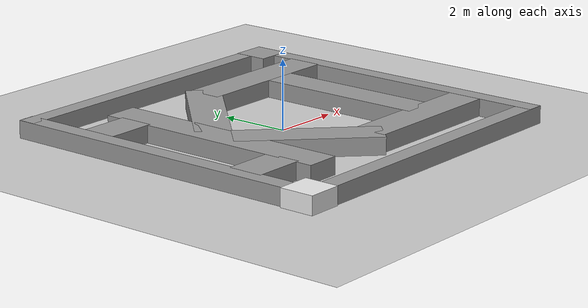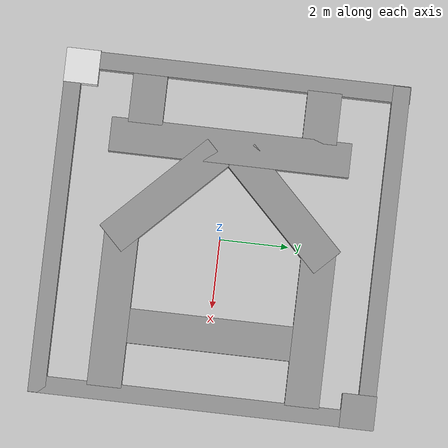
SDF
<sdf version="1.7">
 <world name="default">
  <light name="sun" type="directional">
   <pose>0 0 10 0 -0 0</pose>
   <diffuse>0.8 0.8 0.8 1</diffuse>
   <specular>0.2 0.2 0.2 1</specular>
   <attenuation>
    <range>1000</range>
    <constant>0.9</constant>
    <linear>0.01</linear>
    <quadratic>0.001</quadratic>
   </attenuation>
   <direction>-0.5 0.1 -0.9</direction>
   <spot><inner_angle>0</inner_angle><outer_angle>0</outer_angle><falloff>0</falloff></spot>
  </light>
  <gravity>0 0 -9.8</gravity>
  <magnetic_field>6e-06 2.3e-05 -4.2e-05</magnetic_field>
  <atmosphere type="adiabatic"/>
  <physics type="ode">
   <max_step_size>0.001</max_step_size>
   <real_time_factor>1</real_time_factor>
   <real_time_update_rate>1000</real_time_update_rate>
  </physics>
  <scene><ambient>0.4 0.4 0.4 1</ambient><background>0.7 0.7 0.7 1</background><shadows>1</shadows></scene>
  <spherical_coordinates>
   <surface_model>EARTH_WGS84</surface_model>
   <latitude_deg>0</latitude_deg>
   <longitude_deg>0</longitude_deg>
   <elevation>0</elevation>
   <heading_deg>0</heading_deg>
  </spherical_coordinates>
  <model name="ground_plane">
   <static>1</static>
   <link name="link">
    <collision name="collision">
     <geometry><plane><normal>0 0 1</normal><size>100 100</size></plane></geometry>
     <surface>
      <contact><collide_bitmask>65535</collide_bitmask></contact>
      <friction><ode><mu>100</mu><mu2>50</mu2></ode></friction>
     </surface>
    </collision>
    <visual name="visual">
     <cast_shadows>0</cast_shadows>
     <geometry><plane><normal>0 0 1</normal><size>100 100</size></plane></geometry>
     <material>
      <script><uri>file://media/materials/scripts/gazebo.material</uri><name>Gazebo/Grey</name></script>
     </material>
    </visual>
   </link>
  </model>
  <model name="Robotic_HW1">
   <link name="Wall_0">
    <collision name="Wall_0_Collision">
     <geometry><box><size>10 0.5 0.5</size></box></geometry>
     <pose>0 0 0.25 0 -0 0</pose>
    </collision>
    <visual name="Wall_0_Visual">
     <pose>0 0 0.25 0 -0 0</pose>
     <geometry><box><size>10 0.5 0.5</size></box></geometry>
     <material>
      <script><uri>file://media/materials/scripts/gazebo.material</uri><name>Gazebo/Grey</name></script>
      <ambient>1 1 1 1</ambient>
     </material>
     <meta><layer>0</layer></meta>
    </visual>
    <pose>0.007513 4.75123 0 0 -0 0</pose>
   </link>
   <link name="Wall_10">
    <collision name="Wall_10_Collision">
     <geometry><box><size>4 1 0.5</size></box></geometry>
     <pose>0 0 0.25 0 -0 0</pose>
    </collision>
    <visual name="Wall_10_Visual">
     <pose>0 0 0.25 0 -0 0</pose>
     <geometry><box><size>4 1 0.5</size></box></geometry>
     <material>
      <script><uri>file://media/materials/scripts/gazebo.material</uri><name>Gazebo/Grey</name></script>
      <ambient>1 1 1 1</ambient>
     </material>
     <meta><layer>0</layer></meta>
    </visual>
    <pose>-1.07881 -1.73464 0 0 -0 -0.785168</pose>
   </link>
   <link name="Wall_14">
    <collision name="Wall_14_Collision">
     <geometry><box><size>4 1 0.5</size></box></geometry>
     <pose>0 0 0.25 0 -0 0</pose>
    </collision>
    <visual name="Wall_14_Visual">
     <pose>0 0 0.25 0 -0 0</pose>
     <geometry><box><size>4 1 0.5</size></box></geometry>
     <material>
      <script><uri>file://media/materials/scripts/gazebo.material</uri><name>Gazebo/Grey</name></script>
      <ambient>1 1 1 1</ambient>
     </material>
     <meta><layer>0</layer></meta>
    </visual>
    <pose>-1.07859 1.75079 0 0 -0 0.785398</pose>
   </link>
   <link name="Wall_16">
    <collision name="Wall_16_Collision">
     <geometry><box><size>4.5 1 0.5</size></box></geometry>
     <pose>0 0 0.25 0 -0 0</pose>
    </collision>
    <visual name="Wall_16_Visual">
     <pose>0 0 0.25 0 -0 0</pose>
     <geometry><box><size>4.5 1 0.5</size></box></geometry>
     <material>
      <script><uri>file://media/materials/scripts/gazebo.material</uri><name>Gazebo/Grey</name></script>
      <ambient>1 1 1 1</ambient>
     </material>
     <meta><layer>0</layer></meta>
    </visual>
    <pose>2.30422 2.89388 0 0 -0 0</pose>
   </link>
   <link name="Wall_18">
    <collision name="Wall_18_Collision">
     <geometry><box><size>4.5 1 0.5</size></box></geometry>
     <pose>0 0 0.25 0 -0 0</pose>
    </collision>
    <visual name="Wall_18_Visual">
     <pose>0 0 0.25 0 -0 0</pose>
     <geometry><box><size>4.5 1 0.5</size></box></geometry>
     <material>
      <script><uri>file://media/materials/scripts/gazebo.material</uri><name>Gazebo/Grey</name></script>
      <ambient>1 1 1 1</ambient>
     </material>
     <meta><layer>0</layer></meta>
    </visual>
    <pose>2.35669 -2.84286 0 0 -0 0</pose>
   </link>
   <link name="Wall_2">
    <collision name="Wall_2_Collision">
     <geometry><box><size>10 0.5 0.5</size></box></geometry>
     <pose>0 0 0.25 0 -0 0</pose>
    </collision>
    <visual name="Wall_2_Visual">
     <pose>0 0 0.25 0 -0 0</pose>
     <geometry><box><size>10 0.5 0.5</size></box></geometry>
     <material>
      <script><uri>file://media/materials/scripts/gazebo.material</uri><name>Gazebo/Grey</name></script>
      <ambient>1 1 1 1</ambient>
     </material>
     <meta><layer>0</layer></meta>
    </visual>
    <pose>4.75122 -0.004906 0 0 -0 1.5708</pose>
   </link>
   <link name="Wall_21">
    <collision name="Wall_21_Collision">
     <geometry><box><size>1.5 1 0.5</size></box></geometry>
     <pose>0 0 0.25 0 -0 0</pose>
    </collision>
    <visual name="Wall_21_Visual">
     <pose>0 0 0.25 0 -0 0</pose>
     <geometry><box><size>1.5 1 0.5</size></box></geometry>
     <material>
      <script><uri>file://media/materials/scripts/gazebo.material</uri><name>Gazebo/Grey</name></script>
      <ambient>1 1 1 1</ambient>
     </material>
     <meta><layer>0</layer></meta>
    </visual>
    <pose>-3.82949 2.54857 0 0 -0 0</pose>
   </link>
   <link name="Wall_23">
    <collision name="Wall_23_Collision">
     <geometry><box><size>1.5 1 0.5</size></box></geometry>
     <pose>0 0 0.25 0 -0 0</pose>
    </collision>
    <visual name="Wall_23_Visual">
     <pose>0 0 0.25 0 -0 0</pose>
     <geometry><box><size>1.5 1 0.5</size></box></geometry>
     <material>
      <script><uri>file://media/materials/scripts/gazebo.material</uri><name>Gazebo/Grey</name></script>
      <ambient>1 1 1 1</ambient>
     </material>
     <meta><layer>0</layer></meta>
    </visual>
    <pose>-3.83714 -2.52834 0 0 -0 0</pose>
   </link>
   <link name="Wall_25">
    <collision name="Wall_25_Collision">
     <geometry><box><size>5 1 0.5</size></box></geometry>
     <pose>0 0 0.25 0 -0 0</pose>
    </collision>
    <visual name="Wall_25_Visual">
     <pose>0 0 0.25 0 -0 0</pose>
     <geometry><box><size>5 1 0.5</size></box></geometry>
     <material>
      <script><uri>file://media/materials/scripts/gazebo.material</uri><name>Gazebo/Grey</name></script>
      <ambient>1 1 1 1</ambient>
     </material>
     <meta><layer>0</layer></meta>
    </visual>
    <pose>2.7826 -0.049624 0 0 -0 -1.5708</pose>
   </link>
   <link name="Wall_4">
    <collision name="Wall_4_Collision">
     <geometry><box><size>10 0.5 0.5</size></box></geometry>
     <pose>0 0 0.25 0 -0 0</pose>
    </collision>
    <visual name="Wall_4_Visual">
     <pose>0 0 0.25 0 -0 0</pose>
     <geometry><box><size>10 0.5 0.5</size></box></geometry>
     <material>
      <script><uri>file://media/materials/scripts/gazebo.material</uri><name>Gazebo/Grey</name></script>
      <ambient>1 1 1 1</ambient>
     </material>
     <meta><layer>0</layer></meta>
    </visual>
    <pose>-4.75751 0.016837 0 0 -0 -1.5708</pose>
   </link>
   <link name="Wall_6">
    <collision name="Wall_6_Collision">
     <geometry><box><size>10 0.5 0.5</size></box></geometry>
     <pose>0 0 0.25 0 -0 0</pose>
    </collision>
    <visual name="Wall_6_Visual">
     <pose>0 0 0.25 0 -0 0</pose>
     <geometry><box><size>10 0.5 0.5</size></box></geometry>
     <material>
      <script><uri>file://media/materials/scripts/gazebo.material</uri><name>Gazebo/Grey</name></script>
      <ambient>1 1 1 1</ambient>
     </material>
     <meta><layer>0</layer></meta>
    </visual>
    <pose>-0.005684 -4.76684 0 0 -0 0</pose>
   </link>
   <link name="Wall_8">
    <collision name="Wall_8_Collision">
     <geometry><box><size>7 1 0.5</size></box></geometry>
     <pose>0 0 0.25 0 -0 0</pose>
    </collision>
    <visual name="Wall_8_Visual">
     <pose>0 0 0.25 0 -0 0</pose>
     <geometry><box><size>7 1 0.5</size></box></geometry>
     <material>
      <script><uri>file://media/materials/scripts/gazebo.material</uri><name>Gazebo/Grey</name></script>
      <ambient>1 1 1 1</ambient>
     </material>
     <meta><layer>0</layer></meta>
    </visual>
    <pose>-2.68144 -0.001178 0 0 -0 -1.5708</pose>
   </link>
   <static>1</static>
  </model>
  <model name="Start">
   <link name="link">
    <inertial>
     <mass>1</mass>
     <inertia>
      <ixx>0.166667</ixx>
      <ixy>0</ixy>
      <ixz>0</ixz>
      <iyy>0.166667</iyy>
      <iyz>0</iyz>
      <izz>0.166667</izz>
     </inertia>
    </inertial>
    <visual name="visual">
     <geometry><box><size>1 1 0.522344</size></box></geometry>
     <material>
      <script><name>Gazebo/White</name><uri>file://media/materials/scripts/gazebo.material</uri></script>
      <shader type="pixel"><normal_map>__default__</normal_map></shader>
      <ambient>1 1 1 1</ambient>
      <diffuse>1 1 1 1</diffuse>
      <specular>1 1 1 1</specular>
      <emissive>1 1 1 1</emissive>
     </material>
    </visual>
    <collision name="collision">
     <geometry><box><size>1 1 0.522344</size></box></geometry>
     <surface>
      <friction>
       <ode><mu>1</mu><mu2>1</mu2><fdir1>0 0 0</fdir1><slip1>0</slip1><slip2>0</slip2></ode>
       <torsional>
        <coefficient>1</coefficient>
        <patch_radius>0</patch_radius>
        <surface_radius>0</surface_radius>
        <use_patch_radius>1</use_patch_radius>
        <ode><slip>0</slip></ode>
       </torsional>
      </friction>
      <bounce><restitution_coefficient>0</restitution_coefficient><threshold>1e+06</threshold></bounce>
      <contact>
       <collide_without_contact>0</collide_without_contact>
       <collide_without_contact_bitmask>1</collide_without_contact_bitmask>
       <collide_bitmask>1</collide_bitmask>
       <ode>
        <soft_cfm>0</soft_cfm>
        <soft_erp>0.2</soft_erp>
        <kp>1e+13</kp>
        <kd>1</kd>
        <max_vel>0.01</max_vel>
        <min_depth>0</min_depth>
       </ode>
       <bullet>
        <split_impulse>1</split_impulse>
        <split_impulse_penetration_threshold>-0.01</split_impulse_penetration_threshold>
        <soft_cfm>0</soft_cfm>
        <soft_erp>0.2</soft_erp>
        <kp>1e+13</kp>
        <kd>1</kd>
       </bullet>
      </contact>
     </surface>
    </collision>
   </link>
   <static>1</static>
   <pose>-4.54132 -4.53071 0.238932 0 -0 0</pose>
  </model>
  <model name="finish">
   <link name="link">
    <inertial>
     <mass>1</mass>
     <inertia>
      <ixx>0.166667</ixx>
      <ixy>0</ixy>
      <ixz>0</ixz>
      <iyy>0.166667</iyy>
      <iyz>0</iyz>
      <izz>0.166667</izz>
     </inertia>
    </inertial>
    <visual name="visual">
     <geometry><box><size>1 1 0.5</size></box></geometry>
     <material>
      <script><name>Gazebo/Grey</name><uri>file://media/materials/scripts/gazebo.material</uri></script>
      <shader type="pixel"><normal_map>__default__</normal_map></shader>
      <ambient>0.3 0.3 0.3 1</ambient>
      <diffuse>0.7 0.7 0.7 1</diffuse>
      <specular>0.01 0.01 0.01 1</specular>
      <emissive>0 0 0 1</emissive>
     </material>
    </visual>
    <collision name="collision">
     <geometry><box><size>1 1 0.5</size></box></geometry>
     <surface>
      <friction>
       <ode><mu>1</mu><mu2>1</mu2><fdir1>0 0 0</fdir1><slip1>0</slip1><slip2>0</slip2></ode>
       <torsional>
        <coefficient>1</coefficient>
        <patch_radius>0</patch_radius>
        <surface_radius>0</surface_radius>
        <use_patch_radius>1</use_patch_radius>
        <ode><slip>0</slip></ode>
       </torsional>
      </friction>
      <bounce><restitution_coefficient>0</restitution_coefficient><threshold>1e+06</threshold></bounce>
      <contact>
       <collide_without_contact>0</collide_without_contact>
       <collide_without_contact_bitmask>1</collide_without_contact_bitmask>
       <collide_bitmask>1</collide_bitmask>
       <ode>
        <soft_cfm>0</soft_cfm>
        <soft_erp>0.2</soft_erp>
        <kp>1e+13</kp>
        <kd>1</kd>
        <max_vel>0.01</max_vel>
        <min_depth>0</min_depth>
       </ode>
       <bullet>
        <split_impulse>1</split_impulse>
        <split_impulse_penetration_threshold>-0.01</split_impulse_penetration_threshold>
        <soft_cfm>0</soft_cfm>
        <soft_erp>0.2</soft_erp>
        <kp>1e+13</kp>
        <kd>1</kd>
       </bullet>
      </contact>
     </surface>
    </collision>
   </link>
   <static>1</static>
   <pose>4.51178 4.52546 0.25134 0 -0 0</pose>
  </model>
 </world>
</sdf>
